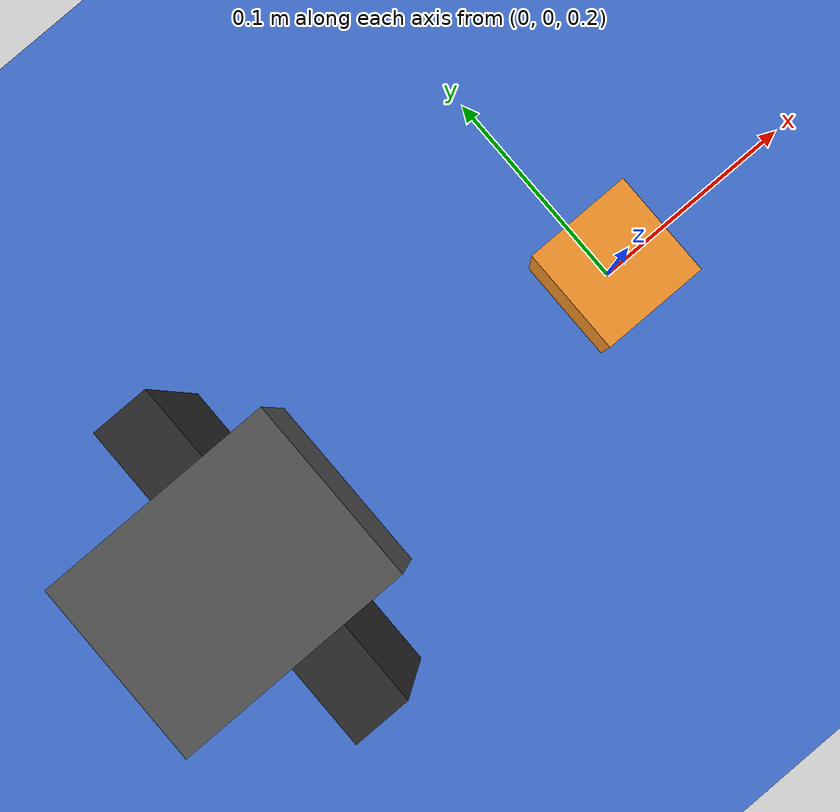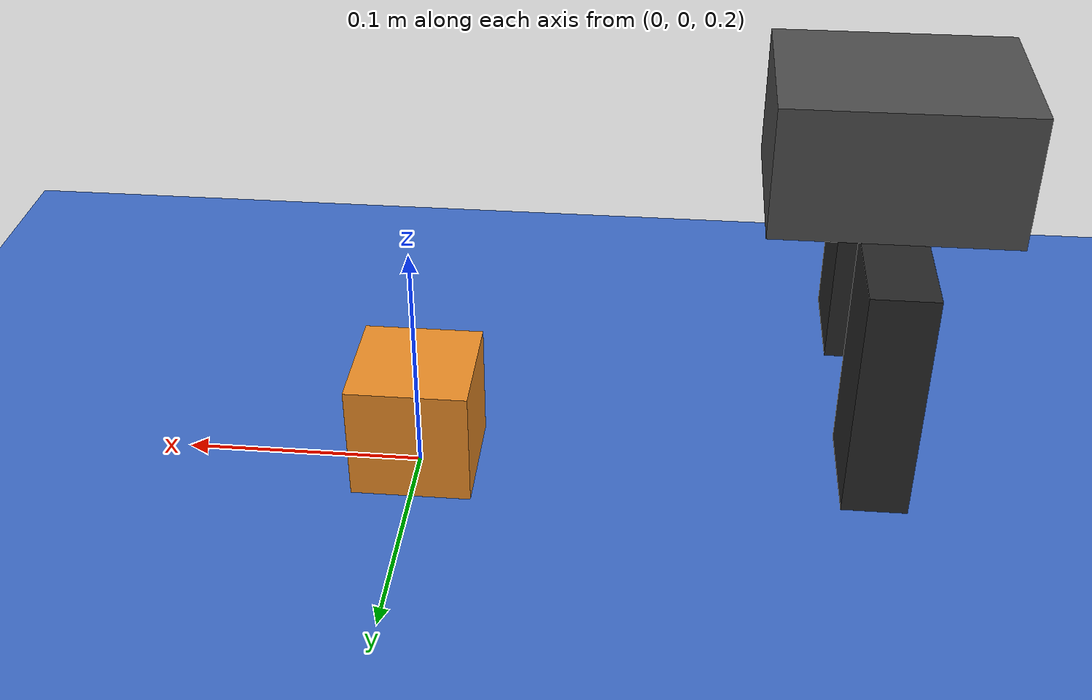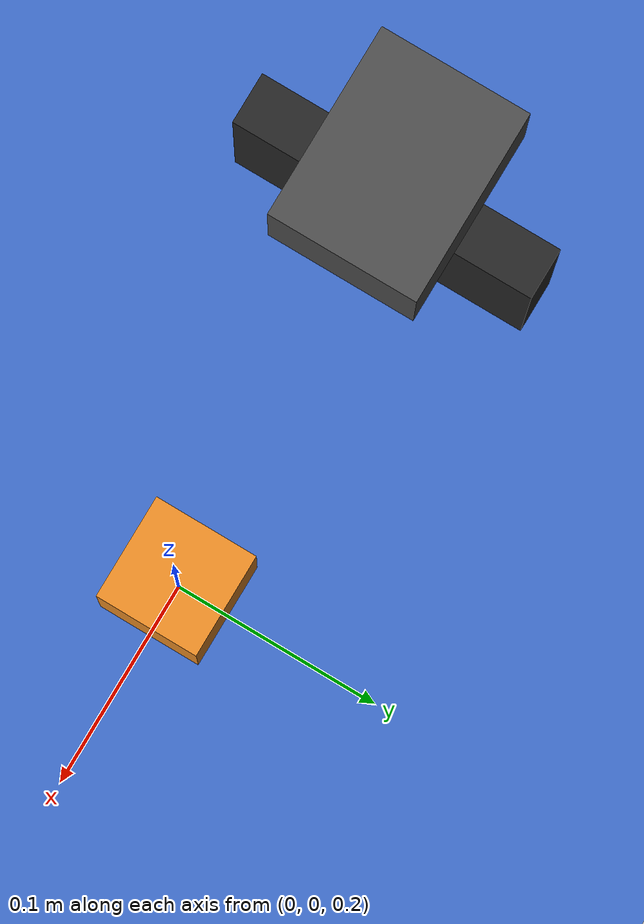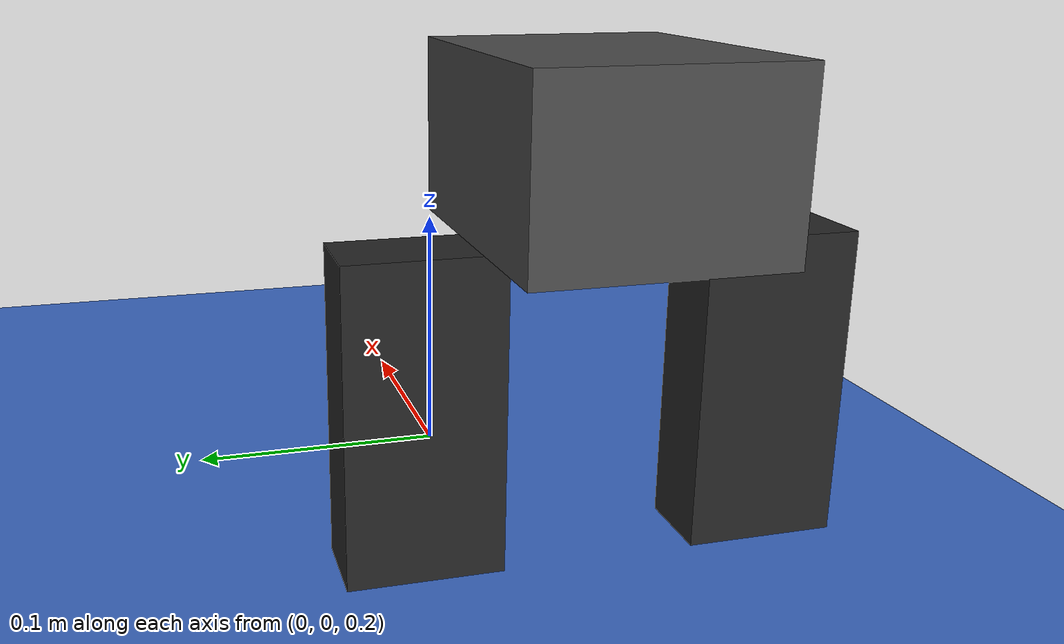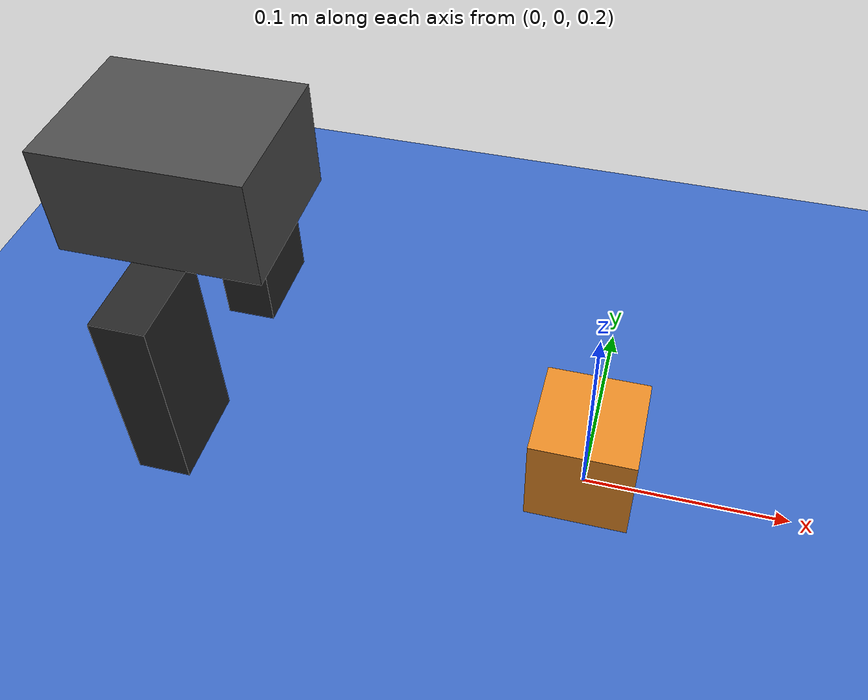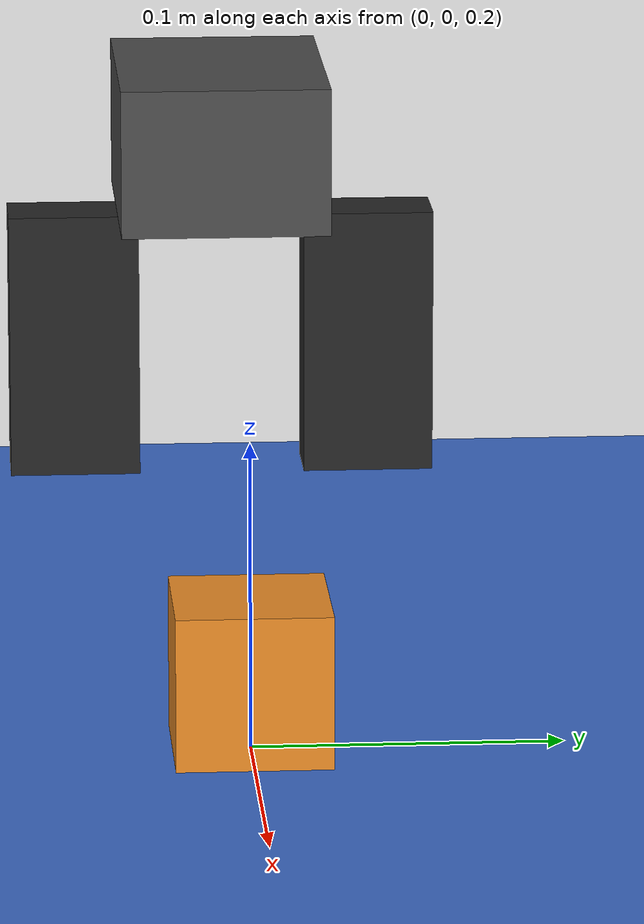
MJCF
<mujoco model="phase1_slide">
  <!--
    MjcPBD phase1：单夹爪推块（无布）
    夹爪：手掌 + 两枚竖直平板指（法向 ⊥ 掌底水平面，沿掌底平面 Y 平移开合）
    5 个 OrcaLink body：base, cube, gripper_palm, gripper_finger1, gripper_finger2
  -->
  <compiler angle="degree" autolimits="true"/>
  <option timestep="0.001" gravity="0 0 -9.81" integrator="implicitfast" solver="CG"
          cone="elliptic" impratio="12" tolerance="1e-7" iterations="200" noslip_iterations="2"/>
  <default>
    <joint damping="0.30" armature="0.001"/>
    <geom solref="0.025 1.2" solimp="0.94 0.997 0.0008" condim="3" friction="0.45 0.02 0.005"/>
  </default>

  <visual>
    <headlight diffuse="0.8 0.8 0.8" ambient="0.2 0.2 0.2" specular="0.25 0.25 0.25"/>
  </visual>

  <worldbody>
    <light pos="0.5 -0.5 1.5" dir="-0.3 0.3 -1"/>
    <camera name="main" pos="1.1 -0.9 0.55" xyaxes="0.75 0.66 0 -0.28 0.32 0.90"/>

    <body name="base" pos="0 0 0.1">
      <geom name="base_geom" type="box" size="0.5 0.5 0.1" rgba="0.24 0.42 0.78 1"
            friction="0.45 0.02 0.005"/>
    </body>

    <body name="cube" pos="0 0 0.225">
      <freejoint name="cube_free"/>
      <geom name="cube_geom" type="box" size="0.025 0.025 0.025" mass="0.12"
            rgba="0.92 0.55 0.15 1" friction="0.50 0.03 0.008"/>
    </body>

    <!-- 掌体锚点 + 三 slide；指挂在掌底，竖直平板（对标 frank pad） -->
    <!-- 掌 z 需使竖直指最低点高于台面 z=0.2（指心 z≈掌_z-0.135） -->
    <body name="gripper_palm" pos="-0.18 0 0.36">
      <joint name="gripper_slide_x" type="slide" axis="1 0 0" range="-0.05 0.35" damping="25"/>
      <joint name="gripper_slide_y" type="slide" axis="0 1 0" range="-0.15 0.15" damping="25"/>
      <joint name="gripper_slide_z" type="slide" axis="0 0 1" range="-0.10 0.05" damping="35"/>
      <geom name="gripper_palm_geom" type="box" size="0.045 0.035 0.025"
            rgba="0.30 0.30 0.30 1" friction="1.0 0.04 0.01"/>

      <!-- 竖直平板：薄 Y（厚度）、宽 X、沿 -Z 向下；slide 在掌底 XY 平面内 -->
      <body name="gripper_finger1" pos="0 0.050 -0.070">
        <joint name="gripper_finger1_slide" type="slide" axis="0 -1 0" range="0 0.042" damping="10"/>
        <!-- 竖直平板：half_z 向下伸展，侧面 ⊥ 掌底平面（法向沿 ±Y） -->
        <geom name="gripper_finger1_geom" type="box" size="0.012 0.022 0.045"
              rgba="0.15 0.15 0.15 1" condim="4" friction="1.2 0.05 0.01"/>
      </body>

      <body name="gripper_finger2" pos="0 -0.050 -0.070">
        <joint name="gripper_finger2_slide" type="slide" axis="0 1 0" range="0 0.042" damping="10"/>
        <geom name="gripper_finger2_geom" type="box" size="0.012 0.022 0.045"
              rgba="0.15 0.15 0.15 1" condim="4" friction="1.2 0.05 0.01"/>
      </body>
    </body>
  </worldbody>

  <equality>
    <joint joint1="gripper_finger1_slide" joint2="gripper_finger2_slide"/>
  </equality>

  <tendon>
    <fixed name="gripper_grasp">
      <joint joint="gripper_finger1_slide" coef="0.35"/>
      <joint joint="gripper_finger2_slide" coef="0.35"/>
    </fixed>
  </tendon>

  <actuator>
    <position name="gripper_move_x" joint="gripper_slide_x" kp="180" dampratio="1"
              ctrlrange="-0.05 0.35"/>
    <position name="gripper_move_y" joint="gripper_slide_y" kp="700" dampratio="1"
              ctrlrange="-0.15 0.15"/>
    <position name="gripper_move_z" joint="gripper_slide_z" kp="850" dampratio="1"
              ctrlrange="-0.10 0.05"/>
    <position name="gripper_grasp_ctrl" tendon="gripper_grasp" kp="1250" dampratio="1"
              ctrlrange="0 0.042"/>
  </actuator>

</mujoco>
